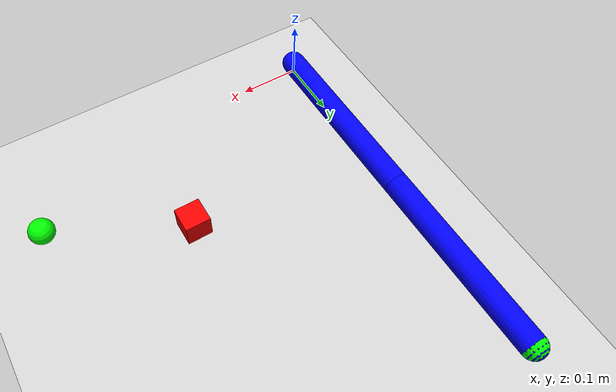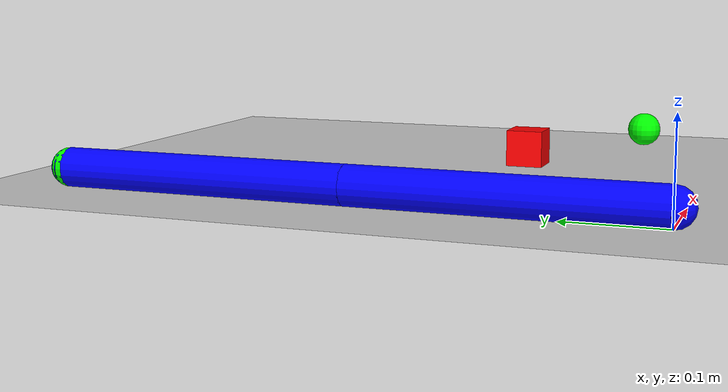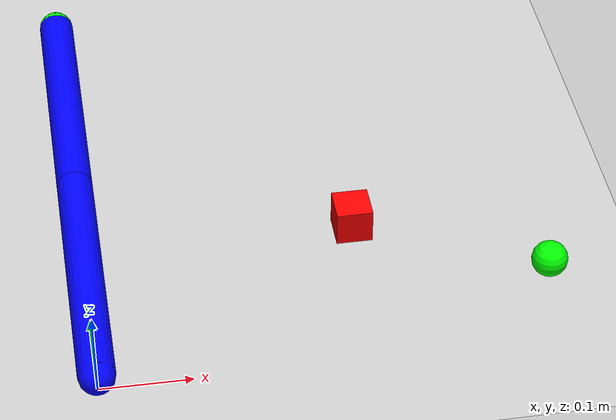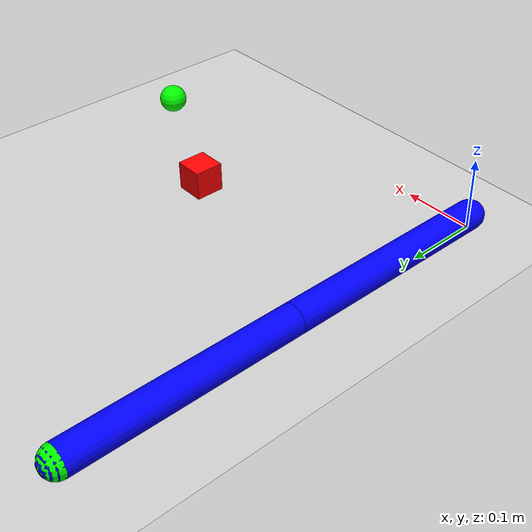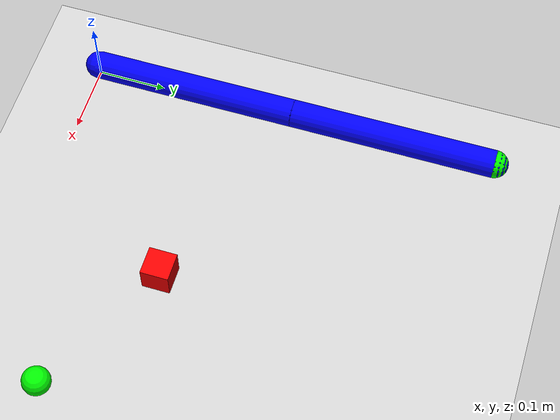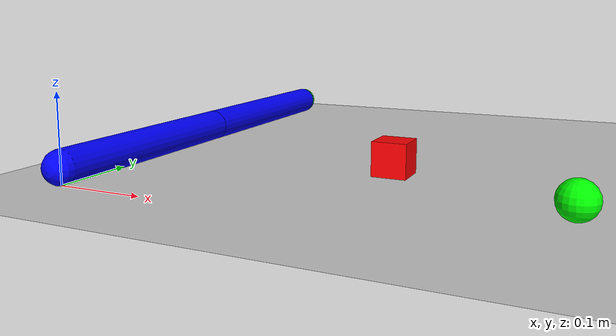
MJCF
<mujoco model="pick_place">
    <compiler angle="radian"/>
    <option gravity="0 0 -9.81"/>

    <worldbody>
        <!-- Flat ground -->
        <geom name="floor" type="plane" size="1 1 0.1" rgba="0.8 0.8 0.8 1"/>

        <!-- 2-link robot arm -->
        <body name="base" pos="0 0 0.02">
            <body name="link1" pos="0 0 0.0">
                <joint name="joint1" type="hinge" axis="0 0 1" range="-3.14 3.14"/>
                <geom name="link1" type="capsule" fromto="0 0 0  0 0.3 0" size="0.02" rgba="0 0 1 1" contype="1" conaffinity="1"/>

                <body name="link2" pos="0 0.3 0">
                    <joint name="joint2" type="hinge" axis="0 0 1" range="-3.14 3.14"/>
                    <geom name="link2" type="capsule" fromto="0 0 0  0 0.3 0" size="0.02" rgba="0 0 1 1" contype="1" conaffinity="1"/>

                    <!-- Gripper site -->
                    <site name="grip_site" pos="0 0.3 0" size="0.02" rgba="0 1 0 1"/>
                </body>
            </body>
        </body>

        <!-- Object to pick -->
        <body name="object" pos="0.3 0.2 0.02">
            <joint name="obj_free" type="free" />
            <geom name="object_geom" type="box" size="0.02 0.02 0.02" rgba="1 0 0 1" mass="0.1" contype="1" conaffinity="1"/>
        </body>

        <!-- Goal position -->
        <site name="goal_site" pos="0.5 0.1 0.02" size="0.02" rgba="0 1 0 1"/>
    </worldbody>

    <actuator>
        <motor joint="joint1" ctrlrange="-1 1" gear="1"/>
        <motor joint="joint2" ctrlrange="-1 1" gear="1"/>
    </actuator>
</mujoco>
